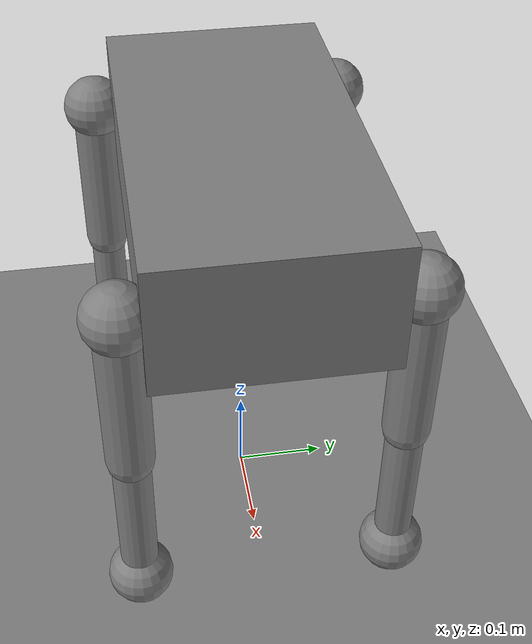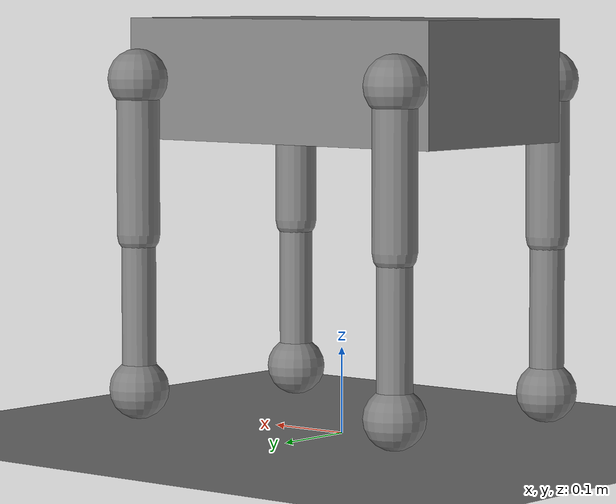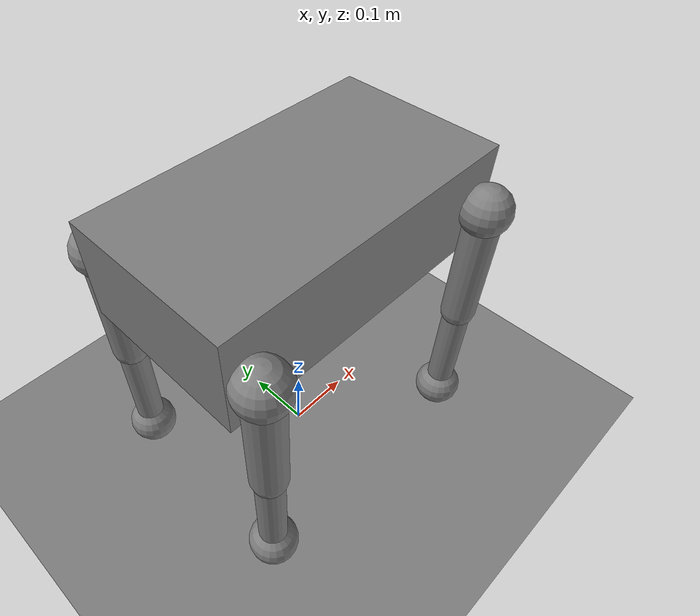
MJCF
<mujoco model="synthetic-local-feasibility">
      <compiler angle="radian"/>
      <option timestep="0.004166666666666667" integrator="implicitfast" solver="Newton" iterations="20" gravity="0 0 -9.81"/>
      <default><joint damping="0.1" armature="0.003"/><geom friction="0.8 0.005 0.0001" condim="3"/></default>
      <worldbody><geom name="ground" type="plane" size="3 3 0.1"/>
        <body name="torso" pos="0 0 0.41"><freejoint/>
          <geom type="box" size="0.22 0.12 0.07" mass="2"/>
          <body name="hip0" pos="0.19 0.14 0">
          <joint name="abduct0" axis="1 0 0" range="-0.6 0.6"/>
          <geom type="sphere" size="0.035" mass="0.08"/>
          <body name="upper0">
            <joint name="hipflex0" axis="0 1 0" range="-1.3 1.3"/>
            <geom type="capsule" fromto="0 0 0 0 0 -0.18" size="0.025" mass="0.12"/>
            <body name="lower0" pos="0 0 -0.18">
              <joint name="knee0" axis="0 1 0" range="-1.8 1.8"/>
              <geom type="capsule" fromto="0 0 0 0 0 -0.18" size="0.02" mass="0.08"/>
              <geom name="foot0" type="sphere" pos="0 0 -0.18" size="0.035" mass="0.04"/>
            </body>
          </body>
        </body><body name="hip1" pos="0.19 -0.14 0">
          <joint name="abduct1" axis="1 0 0" range="-0.6 0.6"/>
          <geom type="sphere" size="0.035" mass="0.08"/>
          <body name="upper1">
            <joint name="hipflex1" axis="0 1 0" range="-1.3 1.3"/>
            <geom type="capsule" fromto="0 0 0 0 0 -0.18" size="0.025" mass="0.12"/>
            <body name="lower1" pos="0 0 -0.18">
              <joint name="knee1" axis="0 1 0" range="-1.8 1.8"/>
              <geom type="capsule" fromto="0 0 0 0 0 -0.18" size="0.02" mass="0.08"/>
              <geom name="foot1" type="sphere" pos="0 0 -0.18" size="0.035" mass="0.04"/>
            </body>
          </body>
        </body><body name="hip2" pos="-0.19 0.14 0">
          <joint name="abduct2" axis="1 0 0" range="-0.6 0.6"/>
          <geom type="sphere" size="0.035" mass="0.08"/>
          <body name="upper2">
            <joint name="hipflex2" axis="0 1 0" range="-1.3 1.3"/>
            <geom type="capsule" fromto="0 0 0 0 0 -0.18" size="0.025" mass="0.12"/>
            <body name="lower2" pos="0 0 -0.18">
              <joint name="knee2" axis="0 1 0" range="-1.8 1.8"/>
              <geom type="capsule" fromto="0 0 0 0 0 -0.18" size="0.02" mass="0.08"/>
              <geom name="foot2" type="sphere" pos="0 0 -0.18" size="0.035" mass="0.04"/>
            </body>
          </body>
        </body><body name="hip3" pos="-0.19 -0.14 0">
          <joint name="abduct3" axis="1 0 0" range="-0.6 0.6"/>
          <geom type="sphere" size="0.035" mass="0.08"/>
          <body name="upper3">
            <joint name="hipflex3" axis="0 1 0" range="-1.3 1.3"/>
            <geom type="capsule" fromto="0 0 0 0 0 -0.18" size="0.025" mass="0.12"/>
            <body name="lower3" pos="0 0 -0.18">
              <joint name="knee3" axis="0 1 0" range="-1.8 1.8"/>
              <geom type="capsule" fromto="0 0 0 0 0 -0.18" size="0.02" mass="0.08"/>
              <geom name="foot3" type="sphere" pos="0 0 -0.18" size="0.035" mass="0.04"/>
            </body>
          </body>
        </body>
        </body>
      </worldbody><actuator><position joint="abduct0" kp="30" kv="1.5" ctrlrange="-0.5 0.5" forcerange="-4 4"/><position joint="hipflex0" kp="30" kv="1.5" ctrlrange="-0.5 0.5" forcerange="-4 4"/><position joint="knee0" kp="30" kv="1.5" ctrlrange="-0.5 0.5" forcerange="-4 4"/><position joint="abduct1" kp="30" kv="1.5" ctrlrange="-0.5 0.5" forcerange="-4 4"/><position joint="hipflex1" kp="30" kv="1.5" ctrlrange="-0.5 0.5" forcerange="-4 4"/><position joint="knee1" kp="30" kv="1.5" ctrlrange="-0.5 0.5" forcerange="-4 4"/><position joint="abduct2" kp="30" kv="1.5" ctrlrange="-0.5 0.5" forcerange="-4 4"/><position joint="hipflex2" kp="30" kv="1.5" ctrlrange="-0.5 0.5" forcerange="-4 4"/><position joint="knee2" kp="30" kv="1.5" ctrlrange="-0.5 0.5" forcerange="-4 4"/><position joint="abduct3" kp="30" kv="1.5" ctrlrange="-0.5 0.5" forcerange="-4 4"/><position joint="hipflex3" kp="30" kv="1.5" ctrlrange="-0.5 0.5" forcerange="-4 4"/><position joint="knee3" kp="30" kv="1.5" ctrlrange="-0.5 0.5" forcerange="-4 4"/></actuator>
    </mujoco>
